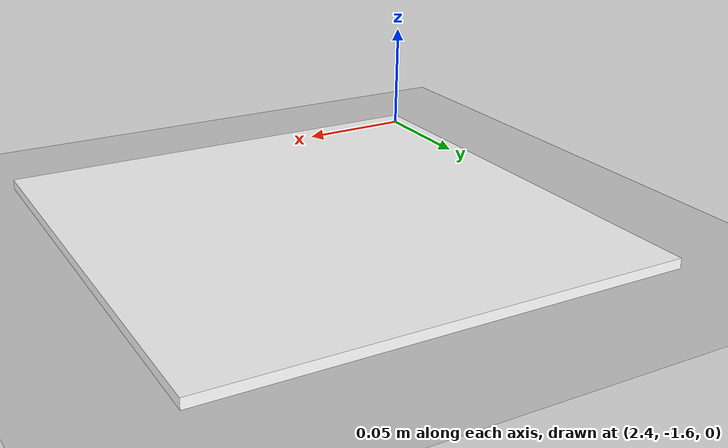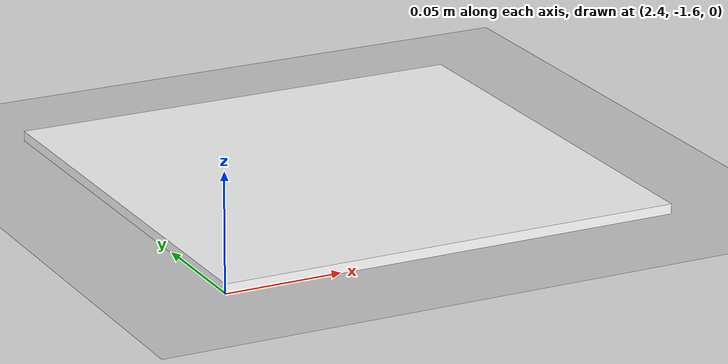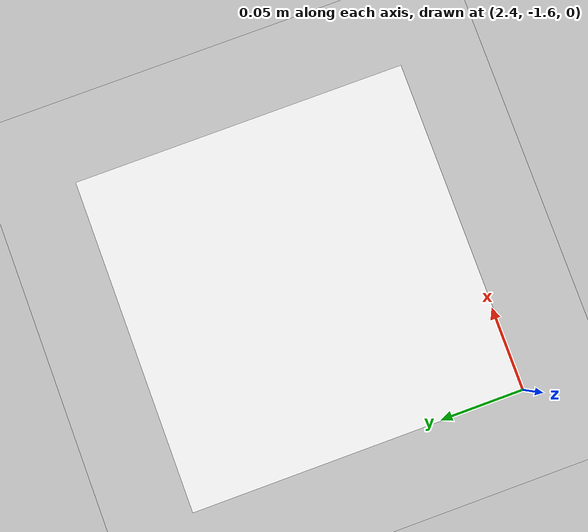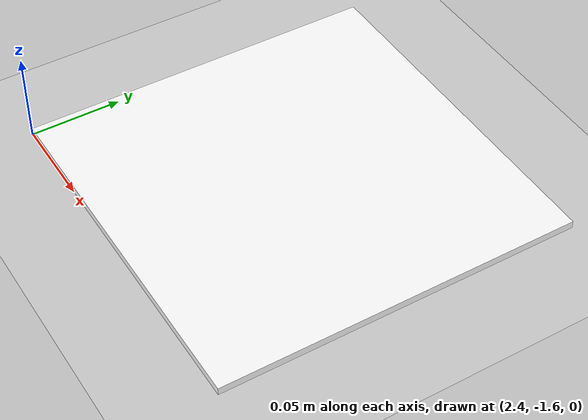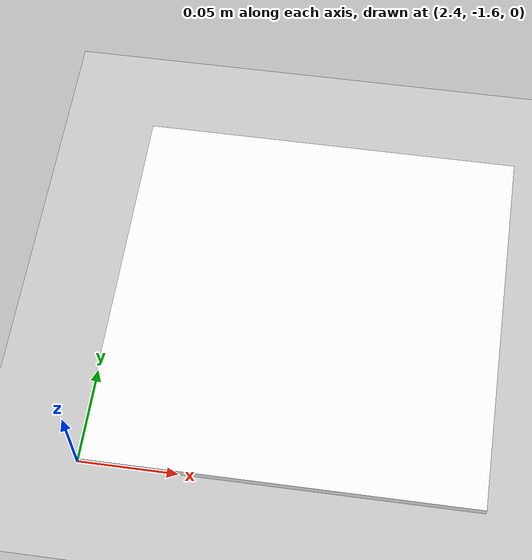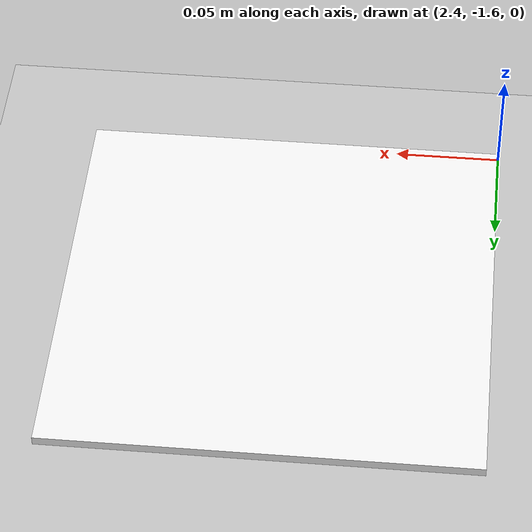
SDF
<sdf version="1.7">
 <world name="default">
  <light name="sun" type="directional">
   <pose>0 0 10 0 -0 0</pose>
   <diffuse>0.8 0.8 0.8 1</diffuse>
   <specular>0.2 0.2 0.2 1</specular>
   <attenuation>
    <range>1000</range>
    <constant>0.9</constant>
    <linear>0.01</linear>
    <quadratic>0.001</quadratic>
   </attenuation>
   <direction>-0.5 0.1 -0.9</direction>
   <spot><inner_angle>0</inner_angle><outer_angle>0</outer_angle><falloff>0</falloff></spot>
  </light>
  <model name="ground_plane">
   <static>1</static>
   <link name="link">
    <collision name="collision">
     <geometry><plane><normal>0 0 1</normal><size>100 100</size></plane></geometry>
     <surface><friction><ode><mu>100</mu><mu2>50</mu2></ode></friction></surface>
    </collision>
    <visual name="visual">
     <cast_shadows>0</cast_shadows>
     <geometry><plane><normal>0 0 1</normal><size>100 100</size></plane></geometry>
     <material>
      <script><uri>file://media/materials/scripts/gazebo.material</uri><name>Gazebo/Grey</name></script>
     </material>
    </visual>
   </link>
  </model>
  <gravity>0 0 -9.8</gravity>
  <magnetic_field>6e-06 2.3e-05 -4.2e-05</magnetic_field>
  <atmosphere type="adiabatic"/>
  <physics type="ode">
   <max_step_size>0.001</max_step_size>
   <real_time_factor>1</real_time_factor>
   <real_time_update_rate>1000</real_time_update_rate>
  </physics>
  <scene><ambient>0.4 0.4 0.4 1</ambient><background>0.7 0.7 0.7 1</background><shadows>1</shadows></scene>
  <audio><device>default</device></audio>
  <spherical_coordinates>
   <surface_model>EARTH_WGS84</surface_model>
   <latitude_deg>0</latitude_deg>
   <longitude_deg>0</longitude_deg>
   <elevation>0</elevation>
   <heading_deg>0</heading_deg>
  </spherical_coordinates>
  <model name="number1">
   <link name="link">
    <inertial>
     <mass>1</mass>
     <inertia><ixx>1</ixx><ixy>0</ixy><ixz>0</ixz><iyy>1</iyy><iyz>0</iyz><izz>1</izz></inertia>
    </inertial>
    <visual name="visual">
     <geometry><mesh><uri>model://number1/meshes/number.dae</uri><scale>0.25 0.25 0.01</scale></mesh></geometry>
     <material>
      <script>
       <uri>model://number1/materials/scripts</uri>
       <uri>model://number1/materials/textures</uri>
       <name>Number/One</name>
      </script>
      <shader type="pixel"><normal_map>__default__</normal_map></shader>
      <ambient>1 1 1 1</ambient>
      <diffuse>1 1 1 1</diffuse>
      <specular>0 0 0 1</specular>
      <emissive>0 0 0 1</emissive>
     </material>
    </visual>
   </link>
   <static>1</static>
   <pose>2.5 -1.5 0 0 -0 0</pose>
  </model>
 </world>
</sdf>
